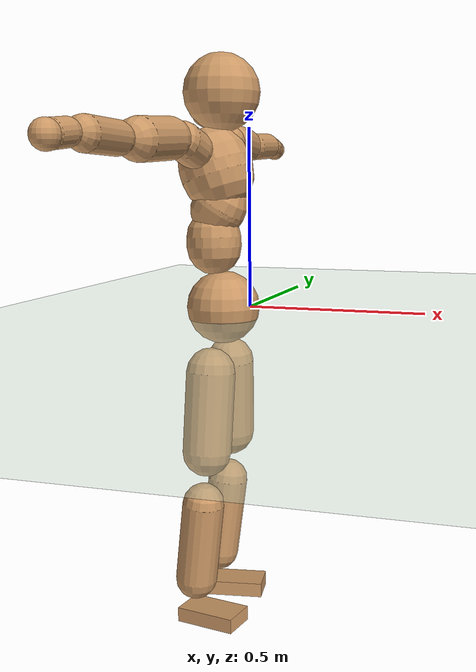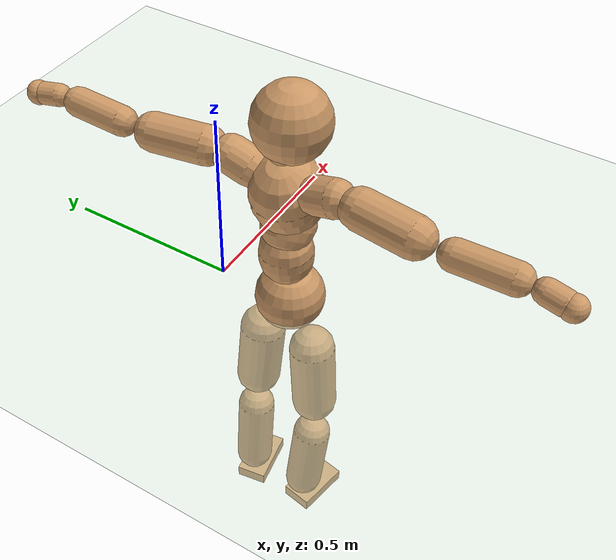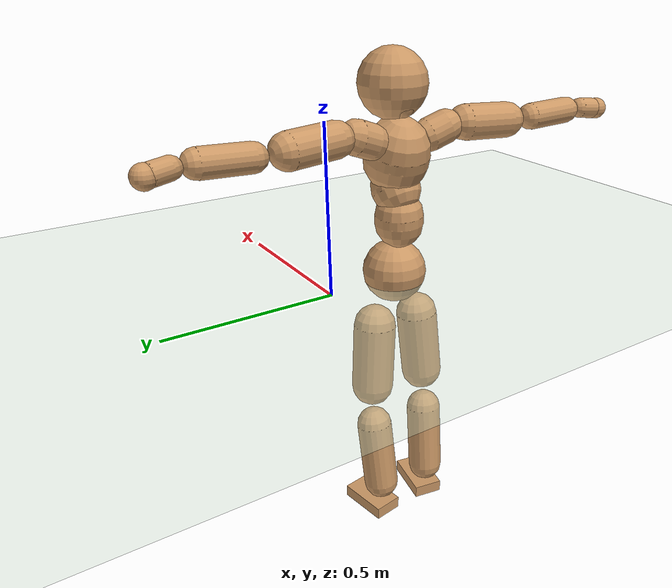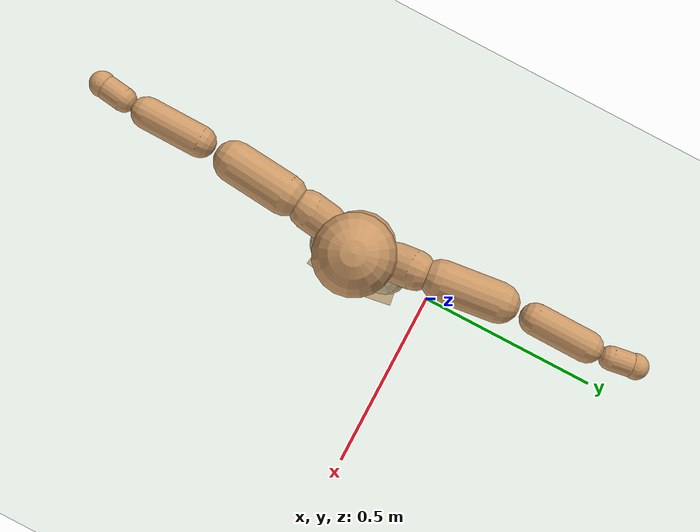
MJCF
<mujoco model="humanoid">
  <compiler coordinate="local"/>
  <default>
    <joint damping="0.0" armature="0.01" stiffness="0.0" limited="true"/>
    <geom conaffinity="1" condim="3" contype="7" margin="0.001" rgba="0.8 0.6 .4 1"/>
  </default>
  <asset>
    <texture type="skybox" builtin="gradient" rgb1=".4 .5 .6" rgb2="0 0 0" width="100" height="100"/>
    <texture builtin="flat" height="1278" mark="cross" markrgb="1 1 1" name="texgeom" random="0.01" rgb1="0.8 0.6 0.4" rgb2="0.8 0.6 0.4" type="cube" width="127"/>
    <texture builtin="checker" height="100" name="texplane" rgb1="0 0 0" rgb2="0.8 0.8 0.8" type="2d" width="100"/>
    <material name="MatPlane" reflectance="0.5" shininess="1" specular="1" texrepeat="60 60" texture="texplane"/>
    <material name="geom" texture="texgeom" texuniform="true"/>
  </asset>
  <worldbody>
    <light cutoff="100" diffuse="1 1 1" dir="-0 0 -1.3" directional="true" exponent="1" pos="0 0 1.3" specular=".1 .1 .1"/>
    <geom conaffinity="1" condim="3" name="floor" pos="0 0 0" rgba="0.8 0.9 0.8 1" size="100 100 .2" type="plane" material="MatPlane"/>
    <body name="Pelvis" pos="-0.0011 -0.2185 0.0293">
      <freejoint name="Pelvis"/>
      <geom type="sphere" contype="1" conaffinity="1" density="500" size="0.0956" pos="0.0000 0.0000 0.0000" name="Pelvis"/>
      <body name="L_Hip" pos="-0.0099 0.0746 -0.0911">
        <joint name="L_Hip_x" type="hinge" pos="0 0 0" axis="1 0 0" stiffness="800" damping="80" armature="0.02" range="-180.0000 180.0000"/>
        <joint name="L_Hip_y" type="hinge" pos="0 0 0" axis="0 1 0" stiffness="800" damping="80" armature="0.02" range="-180.0000 180.0000"/>
        <joint name="L_Hip_z" type="hinge" pos="0 0 0" axis="0 0 1" stiffness="800" damping="80" armature="0.02" range="-180.0000 180.0000"/>
        <geom type="capsule" contype="1" conaffinity="1" density="500" fromto="-0.0018 0.0049 -0.0684 -0.0073 0.0197 -0.2737" size="0.0641" name="L_Hip"/>
        <body name="L_Knee" pos="-0.0091 0.0246 -0.3421">
          <joint name="L_Knee_x" type="hinge" pos="0 0 0" axis="1 0 0" stiffness="800" damping="80" armature="0.02" range="-180.0000 180.0000"/>
          <joint name="L_Knee_y" type="hinge" pos="0 0 0" axis="0 1 0" stiffness="800" damping="80" armature="0.02" range="-180.0000 180.0000"/>
          <joint name="L_Knee_z" type="hinge" pos="0 0 0" axis="0 0 1" stiffness="800" damping="80" armature="0.02" range="-180.0000 180.0000"/>
          <geom type="capsule" contype="1" conaffinity="1" density="500" fromto="-0.0091 -0.0023 -0.0720 -0.0364 -0.0090 -0.2881" size="0.0548" name="L_Knee"/>
          <body name="L_Ankle" pos="-0.0455 -0.0113 -0.3601">
            <joint name="L_Ankle_x" type="hinge" pos="0 0 0" axis="1 0 0" stiffness="800" damping="80" armature="0.02" range="-180.0000 180.0000"/>
            <joint name="L_Ankle_y" type="hinge" pos="0 0 0" axis="0 1 0" stiffness="800" damping="80" armature="0.02" range="-180.0000 180.0000"/>
            <joint name="L_Ankle_z" type="hinge" pos="0 0 0" axis="0 0 1" stiffness="800" damping="80" armature="0.02" range="-180.0000 180.0000"/>
            <geom type="box" contype="1" conaffinity="1" density="500" pos="0.0561 0.0089 -0.0259" size="0.0817 0.0451 0.0195" quat="0.9969 0.0000 0.0000 0.0788" name="L_Ankle"/>
            <body name="L_Toe" pos="0.1122 0.0179 -0.0519">
              <joint name="L_Toe_x" type="hinge" pos="0 0 0" axis="1 0 0" stiffness="500" damping="50" armature="0.02" range="-180.0000 180.0000"/>
              <joint name="L_Toe_y" type="hinge" pos="0 0 0" axis="0 1 0" stiffness="500" damping="50" armature="0.02" range="-180.0000 180.0000"/>
              <joint name="L_Toe_z" type="hinge" pos="0 0 0" axis="0 0 1" stiffness="500" damping="50" armature="0.02" range="-180.0000 180.0000"/>
              <geom type="box" contype="1" conaffinity="1" density="500" pos="0.0000 0.0000 0.0258" size="0.0009 0.0023 0.001" quat="0.9963 0.0000 0.0000 0.0860" name="L_Toe"/>
            </body>
          </body>
        </body>
      </body>
      <body name="R_Hip" pos="-0.0059 -0.0723 -0.0903">
        <joint name="R_Hip_x" type="hinge" pos="0 0 0" axis="1 0 0" stiffness="800" damping="80" armature="0.02" range="-180.0000 180.0000"/>
        <joint name="R_Hip_y" type="hinge" pos="0 0 0" axis="0 1 0" stiffness="800" damping="80" armature="0.02" range="-180.0000 180.0000"/>
        <joint name="R_Hip_z" type="hinge" pos="0 0 0" axis="0 0 1" stiffness="800" damping="80" armature="0.02" range="-180.0000 180.0000"/>
        <geom type="capsule" contype="1" conaffinity="1" density="500" fromto="-0.0021 -0.0061 -0.0701 -0.0086 -0.0243 -0.2802" size="0.0637" name="R_Hip"/>
        <body name="R_Knee" pos="-0.0107 -0.0304 -0.3503">
          <joint name="R_Knee_x" type="hinge" pos="0 0 0" axis="1 0 0" stiffness="800" damping="80" armature="0.02" range="-180.0000 180.0000"/>
          <joint name="R_Knee_y" type="hinge" pos="0 0 0" axis="0 1 0" stiffness="800" damping="80" armature="0.02" range="-180.0000 180.0000"/>
          <joint name="R_Knee_z" type="hinge" pos="0 0 0" axis="0 0 1" stiffness="800" damping="80" armature="0.02" range="-180.0000 180.0000"/>
          <geom type="capsule" contype="1" conaffinity="1" density="500" fromto="-0.0089 0.0027 -0.0720 -0.0354 0.0108 -0.2879" size="0.0549" name="R_Knee"/>
          <body name="R_Ankle" pos="-0.0443 0.0135 -0.3599">
            <joint name="R_Ankle_x" type="hinge" pos="0 0 0" axis="1 0 0" stiffness="800" damping="80" armature="0.02" range="-180.0000 180.0000"/>
            <joint name="R_Ankle_y" type="hinge" pos="0 0 0" axis="0 1 0" stiffness="800" damping="80" armature="0.02" range="-180.0000 180.0000"/>
            <joint name="R_Ankle_z" type="hinge" pos="0 0 0" axis="0 0 1" stiffness="800" damping="80" armature="0.02" range="-180.0000 180.0000"/>
            <geom type="box" contype="1" conaffinity="1" density="500" pos="0.0577 -0.0103 -0.0215" size="0.0812 0.0459 0.0193" quat="0.9961 0.0000 0.0000 -0.0881" name="R_Ankle"/>
            <body name="R_Toe" pos="0.1155 -0.0206 -0.0431">
              <joint name="R_Toe_x" type="hinge" pos="0 0 0" axis="1 0 0" stiffness="500" damping="50" armature="0.02" range="-180.0000 180.0000"/>
              <joint name="R_Toe_y" type="hinge" pos="0 0 0" axis="0 1 0" stiffness="500" damping="50" armature="0.02" range="-180.0000 180.0000"/>
              <joint name="R_Toe_z" type="hinge" pos="0 0 0" axis="0 0 1" stiffness="500" damping="50" armature="0.02" range="-180.0000 180.0000"/>
              <geom type="box" contype="1" conaffinity="1" density="500" pos="0.0000 0.0000 0.0239" size="0.0009 0.0023 0.0011" quat="0.9969 0.0000 0.0000 -0.0784" name="R_Toe"/>
            </body>
          </body>
        </body>
      </body>
      <body name="Torso" pos="-0.0218 -0.0024 0.1041">
        <joint name="Torso_x" type="hinge" pos="0 0 0" axis="1 0 0" stiffness="1000" damping="100" armature="0.02" range="-180.0000 180.0000"/>
        <joint name="Torso_y" type="hinge" pos="0 0 0" axis="0 1 0" stiffness="1000" damping="100" armature="0.02" range="-180.0000 180.0000"/>
        <joint name="Torso_z" type="hinge" pos="0 0 0" axis="0 0 1" stiffness="1000" damping="100" armature="0.02" range="-180.0000 180.0000"/>
        <geom type="capsule" contype="1" conaffinity="1" density="500" fromto="-0.0024 0.0018 0.0786 -0.0016 0.0012 0.0524" size="0.0715" name="Torso"/>
        <body name="Spine" pos="-0.0041 0.0029 0.131">
          <joint name="Spine_x" type="hinge" pos="0 0 0" axis="1 0 0" stiffness="1000" damping="100" armature="0.02" range="-180.0000 180.0000"/>
          <joint name="Spine_y" type="hinge" pos="0 0 0" axis="0 1 0" stiffness="1000" damping="100" armature="0.02" range="-180.0000 180.0000"/>
          <joint name="Spine_z" type="hinge" pos="0 0 0" axis="0 0 1" stiffness="1000" damping="100" armature="0.02" range="-180.0000 180.0000"/>
          <geom type="capsule" contype="1" conaffinity="1" density="500" fromto="0.0194 0.0015 0.0297 0.0129 0.0010 0.0198" size="0.0718" name="Spine"/>
          <body name="Chest" pos="0.0323 0.0025 0.0495">
            <joint name="Chest_x" type="hinge" pos="0 0 0" axis="1 0 0" stiffness="1000" damping="100" armature="0.02" range="-180.0000 180.0000"/>
            <joint name="Chest_y" type="hinge" pos="0 0 0" axis="0 1 0" stiffness="1000" damping="100" armature="0.02" range="-180.0000 180.0000"/>
            <joint name="Chest_z" type="hinge" pos="0 0 0" axis="0 0 1" stiffness="1000" damping="100" armature="0.02" range="-180.0000 180.0000"/>
            <geom type="capsule" contype="1" conaffinity="1" density="500" fromto="-0.0276 -0.0003 0.0872 -0.0184 -0.0002 0.0582" size="0.0948" name="Chest"/>
            <body name="Neck" pos="-0.0558 -0.0011 0.2052">
              <joint name="Neck_x" type="hinge" pos="0 0 0" axis="1 0 0" stiffness="500" damping="50" armature="0.02" range="-180.0000 180.0000"/>
              <joint name="Neck_y" type="hinge" pos="0 0 0" axis="0 1 0" stiffness="500" damping="50" armature="0.02" range="-180.0000 180.0000"/>
              <joint name="Neck_z" type="hinge" pos="0 0 0" axis="0 0 1" stiffness="500" damping="50" armature="0.02" range="-180.0000 180.0000"/>
              <geom type="capsule" contype="1" conaffinity="1" density="500" fromto="0.0099 0.0005 0.0119 0.0397 0.0021 0.0475" size="0.0403" name="Neck"/>
              <body name="Head" pos="0.0496 0.0026 0.0594">
                <joint name="Head_x" type="hinge" pos="0 0 0" axis="1 0 0" stiffness="500" damping="50" armature="0.02" range="-180.0000 180.0000"/>
                <joint name="Head_y" type="hinge" pos="0 0 0" axis="0 1 0" stiffness="500" damping="50" armature="0.02" range="-180.0000 180.0000"/>
                <joint name="Head_z" type="hinge" pos="0 0 0" axis="0 0 1" stiffness="500" damping="50" armature="0.02" range="-180.0000 180.0000"/>
                <geom type="sphere" contype="1" conaffinity="1" density="500" size="0.0987" pos="0.0000 0.0000 0.0000" name="Head"/>
              </body>
            </body>
            <body name="L_Thorax" pos="-0.0382 0.0752 0.1166">
              <joint name="L_Thorax_x" type="hinge" pos="0 0 0" axis="1 0 0" stiffness="500" damping="50" armature="0.02" range="-180.0000 180.0000"/>
              <joint name="L_Thorax_y" type="hinge" pos="0 0 0" axis="0 1 0" stiffness="500" damping="50" armature="0.02" range="-180.0000 180.0000"/>
              <joint name="L_Thorax_z" type="hinge" pos="0 0 0" axis="0 0 1" stiffness="500" damping="50" armature="0.02" range="-180.0000 180.0000"/>
              <geom type="capsule" contype="1" conaffinity="1" density="500" fromto="-0.0015 0.0170 0.0064 -0.0059 0.0680 0.0255" size="0.0496" name="L_Thorax"/>
              <body name="L_Shoulder" pos="-0.0074 0.0851 0.0319">
                <joint name="L_Shoulder_x" type="hinge" pos="0 0 0" axis="1 0 0" stiffness="500" damping="50" armature="0.02" range="-720.0000 720.0000"/>
                <joint name="L_Shoulder_y" type="hinge" pos="0 0 0" axis="0 1 0" stiffness="500" damping="50" armature="0.02" range="-720.0000 720.0000"/>
                <joint name="L_Shoulder_z" type="hinge" pos="0 0 0" axis="0 0 1" stiffness="500" damping="50" armature="0.02" range="-720.0000 720.0000"/>
                <geom type="capsule" contype="1" conaffinity="1" density="500" fromto="-0.0058 0.0486 -0.0022 -0.0233 0.1944 -0.0086" size="0.0509" name="L_Shoulder"/>
                <body name="L_Elbow" pos="-0.0291 0.2431 -0.0108">
                  <joint name="L_Elbow_x" type="hinge" pos="0 0 0" axis="1 0 0" stiffness="500" damping="50" armature="0.02" range="-720.0000 720.0000"/>
                  <joint name="L_Elbow_y" type="hinge" pos="0 0 0" axis="0 1 0" stiffness="500" damping="50" armature="0.02" range="-720.0000 720.0000"/>
                  <joint name="L_Elbow_z" type="hinge" pos="0 0 0" axis="0 0 1" stiffness="500" damping="50" armature="0.02" range="-720.0000 720.0000"/>
                  <geom type="capsule" contype="1" conaffinity="1" density="500" fromto="0.0003 0.0463 0.0018 0.0014 0.1852 0.0070" size="0.0393" name="L_Elbow"/>
                  <body name="L_Wrist" pos="0.0017 0.2315 0.0088">
                    <joint name="L_Wrist_x" type="hinge" pos="0 0 0" axis="1 0 0" stiffness="300" damping="30" armature="0.02" range="-180.0000 180.0000"/>
                    <joint name="L_Wrist_y" type="hinge" pos="0 0 0" axis="0 1 0" stiffness="300" damping="30" armature="0.02" range="-180.0000 180.0000"/>
                    <joint name="L_Wrist_z" type="hinge" pos="0 0 0" axis="0 0 1" stiffness="300" damping="30" armature="0.02" range="-180.0000 180.0000"/>
                    <geom type="capsule" contype="1" conaffinity="1" density="500" fromto="-0.0025 0.0158 -0.0021 -0.0101 0.0632 -0.0083" size="0.03" name="L_Wrist"/>
                    <body name="L_Hand" pos="-0.0126 0.079 -0.0103">
                      <joint name="L_Hand_x" type="hinge" pos="0 0 0" axis="1 0 0" stiffness="300" damping="30" armature="0.02" range="-180.0000 180.0000"/>
                      <joint name="L_Hand_y" type="hinge" pos="0 0 0" axis="0 1 0" stiffness="300" damping="30" armature="0.02" range="-180.0000 180.0000"/>
                      <joint name="L_Hand_z" type="hinge" pos="0 0 0" axis="0 0 1" stiffness="300" damping="30" armature="0.02" range="-180.0000 180.0000"/>
                      <geom type="sphere" contype="1" conaffinity="1" density="500" size="0.0320" pos="0.0000 0.0000 0.0000" name="L_Hand"/>
                    </body>
                  </body>
                </body>
              </body>
            </body>
            <body name="R_Thorax" pos="-0.044 -0.0757 0.1144">
              <joint name="R_Thorax_x" type="hinge" pos="0 0 0" axis="1 0 0" stiffness="500" damping="50" armature="0.02" range="-180.0000 180.0000"/>
              <joint name="R_Thorax_y" type="hinge" pos="0 0 0" axis="0 1 0" stiffness="500" damping="50" armature="0.02" range="-180.0000 180.0000"/>
              <joint name="R_Thorax_z" type="hinge" pos="0 0 0" axis="0 0 1" stiffness="500" damping="50" armature="0.02" range="-180.0000 180.0000"/>
              <geom type="capsule" contype="1" conaffinity="1" density="500" fromto="-0.0023 -0.0177 0.0063 -0.0091 -0.0710 0.0252" size="0.0484" name="R_Thorax"/>
              <body name="R_Shoulder" pos="-0.0114 -0.0887 0.0315">
                <joint name="R_Shoulder_x" type="hinge" pos="0 0 0" axis="1 0 0" stiffness="500" damping="50" armature="0.02" range="-720.0000 720.0000"/>
                <joint name="R_Shoulder_y" type="hinge" pos="0 0 0" axis="0 1 0" stiffness="500" damping="50" armature="0.02" range="-720.0000 720.0000"/>
                <joint name="R_Shoulder_z" type="hinge" pos="0 0 0" axis="0 0 1" stiffness="500" damping="50" armature="0.02" range="-720.0000 720.0000"/>
                <geom type="capsule" contype="1" conaffinity="1" density="500" fromto="-0.0043 -0.0478 -0.0021 -0.0172 -0.1911 -0.0086" size="0.0519" name="R_Shoulder"/>
                <body name="R_Elbow" pos="-0.0215 -0.2389 -0.0107">
                  <joint name="R_Elbow_x" type="hinge" pos="0 0 0" axis="1 0 0" stiffness="500" damping="50" armature="0.02" range="-720.0000 720.0000"/>
                  <joint name="R_Elbow_y" type="hinge" pos="0 0 0" axis="0 1 0" stiffness="500" damping="50" armature="0.02" range="-720.0000 720.0000"/>
                  <joint name="R_Elbow_z" type="hinge" pos="0 0 0" axis="0 0 1" stiffness="500" damping="50" armature="0.02" range="-720.0000 720.0000"/>
                  <geom type="capsule" contype="1" conaffinity="1" density="500" fromto="-0.0004 -0.0475 0.0015 -0.0017 -0.1900 0.0060" size="0.0392" name="R_Elbow"/>
                  <body name="R_Wrist" pos="-0.0022 -0.2375 0.0075">
                    <joint name="R_Wrist_x" type="hinge" pos="0 0 0" axis="1 0 0" stiffness="300" damping="30" armature="0.02" range="-180.0000 180.0000"/>
                    <joint name="R_Wrist_y" type="hinge" pos="0 0 0" axis="0 1 0" stiffness="300" damping="30" armature="0.02" range="-180.0000 180.0000"/>
                    <joint name="R_Wrist_z" type="hinge" pos="0 0 0" axis="0 0 1" stiffness="300" damping="30" armature="0.02" range="-180.0000 180.0000"/>
                    <geom type="capsule" contype="1" conaffinity="1" density="500" fromto="-0.0021 -0.0159 -0.0016 -0.0085 -0.0637 -0.0062" size="0.0307" name="R_Wrist"/>
                    <body name="R_Hand" pos="-0.0107 -0.0796 -0.0078">
                      <joint name="R_Hand_x" type="hinge" pos="0 0 0" axis="1 0 0" stiffness="300" damping="30" armature="0.02" range="-180.0000 180.0000"/>
                      <joint name="R_Hand_y" type="hinge" pos="0 0 0" axis="0 1 0" stiffness="300" damping="30" armature="0.02" range="-180.0000 180.0000"/>
                      <joint name="R_Hand_z" type="hinge" pos="0 0 0" axis="0 0 1" stiffness="300" damping="30" armature="0.02" range="-180.0000 180.0000"/>
                      <geom type="sphere" contype="1" conaffinity="1" density="500" size="0.0321" pos="0.0000 0.0000 0.0000" name="R_Hand"/>
                    </body>
                  </body>
                </body>
              </body>
            </body>
          </body>
        </body>
      </body>
    </body>
  </worldbody>
  <actuator>
    <motor name="L_Hip_x" joint="L_Hip_x" gear="500"/>
    <motor name="L_Hip_y" joint="L_Hip_y" gear="500"/>
    <motor name="L_Hip_z" joint="L_Hip_z" gear="500"/>
    <motor name="L_Knee_x" joint="L_Knee_x" gear="500"/>
    <motor name="L_Knee_y" joint="L_Knee_y" gear="500"/>
    <motor name="L_Knee_z" joint="L_Knee_z" gear="500"/>
    <motor name="L_Ankle_x" joint="L_Ankle_x" gear="500"/>
    <motor name="L_Ankle_y" joint="L_Ankle_y" gear="500"/>
    <motor name="L_Ankle_z" joint="L_Ankle_z" gear="500"/>
    <motor name="L_Toe_x" joint="L_Toe_x" gear="500"/>
    <motor name="L_Toe_y" joint="L_Toe_y" gear="500"/>
    <motor name="L_Toe_z" joint="L_Toe_z" gear="500"/>
    <motor name="R_Hip_x" joint="R_Hip_x" gear="500"/>
    <motor name="R_Hip_y" joint="R_Hip_y" gear="500"/>
    <motor name="R_Hip_z" joint="R_Hip_z" gear="500"/>
    <motor name="R_Knee_x" joint="R_Knee_x" gear="500"/>
    <motor name="R_Knee_y" joint="R_Knee_y" gear="500"/>
    <motor name="R_Knee_z" joint="R_Knee_z" gear="500"/>
    <motor name="R_Ankle_x" joint="R_Ankle_x" gear="500"/>
    <motor name="R_Ankle_y" joint="R_Ankle_y" gear="500"/>
    <motor name="R_Ankle_z" joint="R_Ankle_z" gear="500"/>
    <motor name="R_Toe_x" joint="R_Toe_x" gear="500"/>
    <motor name="R_Toe_y" joint="R_Toe_y" gear="500"/>
    <motor name="R_Toe_z" joint="R_Toe_z" gear="500"/>
    <motor name="Torso_x" joint="Torso_x" gear="500"/>
    <motor name="Torso_y" joint="Torso_y" gear="500"/>
    <motor name="Torso_z" joint="Torso_z" gear="500"/>
    <motor name="Spine_x" joint="Spine_x" gear="500"/>
    <motor name="Spine_y" joint="Spine_y" gear="500"/>
    <motor name="Spine_z" joint="Spine_z" gear="500"/>
    <motor name="Chest_x" joint="Chest_x" gear="500"/>
    <motor name="Chest_y" joint="Chest_y" gear="500"/>
    <motor name="Chest_z" joint="Chest_z" gear="500"/>
    <motor name="Neck_x" joint="Neck_x" gear="500"/>
    <motor name="Neck_y" joint="Neck_y" gear="500"/>
    <motor name="Neck_z" joint="Neck_z" gear="500"/>
    <motor name="Head_x" joint="Head_x" gear="500"/>
    <motor name="Head_y" joint="Head_y" gear="500"/>
    <motor name="Head_z" joint="Head_z" gear="500"/>
    <motor name="L_Thorax_x" joint="L_Thorax_x" gear="500"/>
    <motor name="L_Thorax_y" joint="L_Thorax_y" gear="500"/>
    <motor name="L_Thorax_z" joint="L_Thorax_z" gear="500"/>
    <motor name="L_Shoulder_x" joint="L_Shoulder_x" gear="500"/>
    <motor name="L_Shoulder_y" joint="L_Shoulder_y" gear="500"/>
    <motor name="L_Shoulder_z" joint="L_Shoulder_z" gear="500"/>
    <motor name="L_Elbow_x" joint="L_Elbow_x" gear="500"/>
    <motor name="L_Elbow_y" joint="L_Elbow_y" gear="500"/>
    <motor name="L_Elbow_z" joint="L_Elbow_z" gear="500"/>
    <motor name="L_Wrist_x" joint="L_Wrist_x" gear="500"/>
    <motor name="L_Wrist_y" joint="L_Wrist_y" gear="500"/>
    <motor name="L_Wrist_z" joint="L_Wrist_z" gear="500"/>
    <motor name="L_Hand_x" joint="L_Hand_x" gear="500"/>
    <motor name="L_Hand_y" joint="L_Hand_y" gear="500"/>
    <motor name="L_Hand_z" joint="L_Hand_z" gear="500"/>
    <motor name="R_Thorax_x" joint="R_Thorax_x" gear="500"/>
    <motor name="R_Thorax_y" joint="R_Thorax_y" gear="500"/>
    <motor name="R_Thorax_z" joint="R_Thorax_z" gear="500"/>
    <motor name="R_Shoulder_x" joint="R_Shoulder_x" gear="500"/>
    <motor name="R_Shoulder_y" joint="R_Shoulder_y" gear="500"/>
    <motor name="R_Shoulder_z" joint="R_Shoulder_z" gear="500"/>
    <motor name="R_Elbow_x" joint="R_Elbow_x" gear="500"/>
    <motor name="R_Elbow_y" joint="R_Elbow_y" gear="500"/>
    <motor name="R_Elbow_z" joint="R_Elbow_z" gear="500"/>
    <motor name="R_Wrist_x" joint="R_Wrist_x" gear="500"/>
    <motor name="R_Wrist_y" joint="R_Wrist_y" gear="500"/>
    <motor name="R_Wrist_z" joint="R_Wrist_z" gear="500"/>
    <motor name="R_Hand_x" joint="R_Hand_x" gear="500"/>
    <motor name="R_Hand_y" joint="R_Hand_y" gear="500"/>
    <motor name="R_Hand_z" joint="R_Hand_z" gear="500"/>
  </actuator>
  <contact>
    <exclude body1="Torso" body2="Chest"/>
    <exclude body1="Head" body2="Chest"/>
    <exclude body1="R_Knee" body2="R_Toe"/>
    <exclude body1="R_Knee" body2="L_Ankle"/>
    <exclude body1="R_Knee" body2="L_Toe"/>
    <exclude body1="L_Knee" body2="L_Toe"/>
    <exclude body1="L_Knee" body2="R_Ankle"/>
    <exclude body1="L_Knee" body2="R_Toe"/>
    <exclude body1="L_Shoulder" body2="Chest"/>
    <exclude body1="R_Shoulder" body2="Chest"/>
  </contact>
  <sensor/>
  <size njmax="700" nconmax="700"/>
</mujoco>
